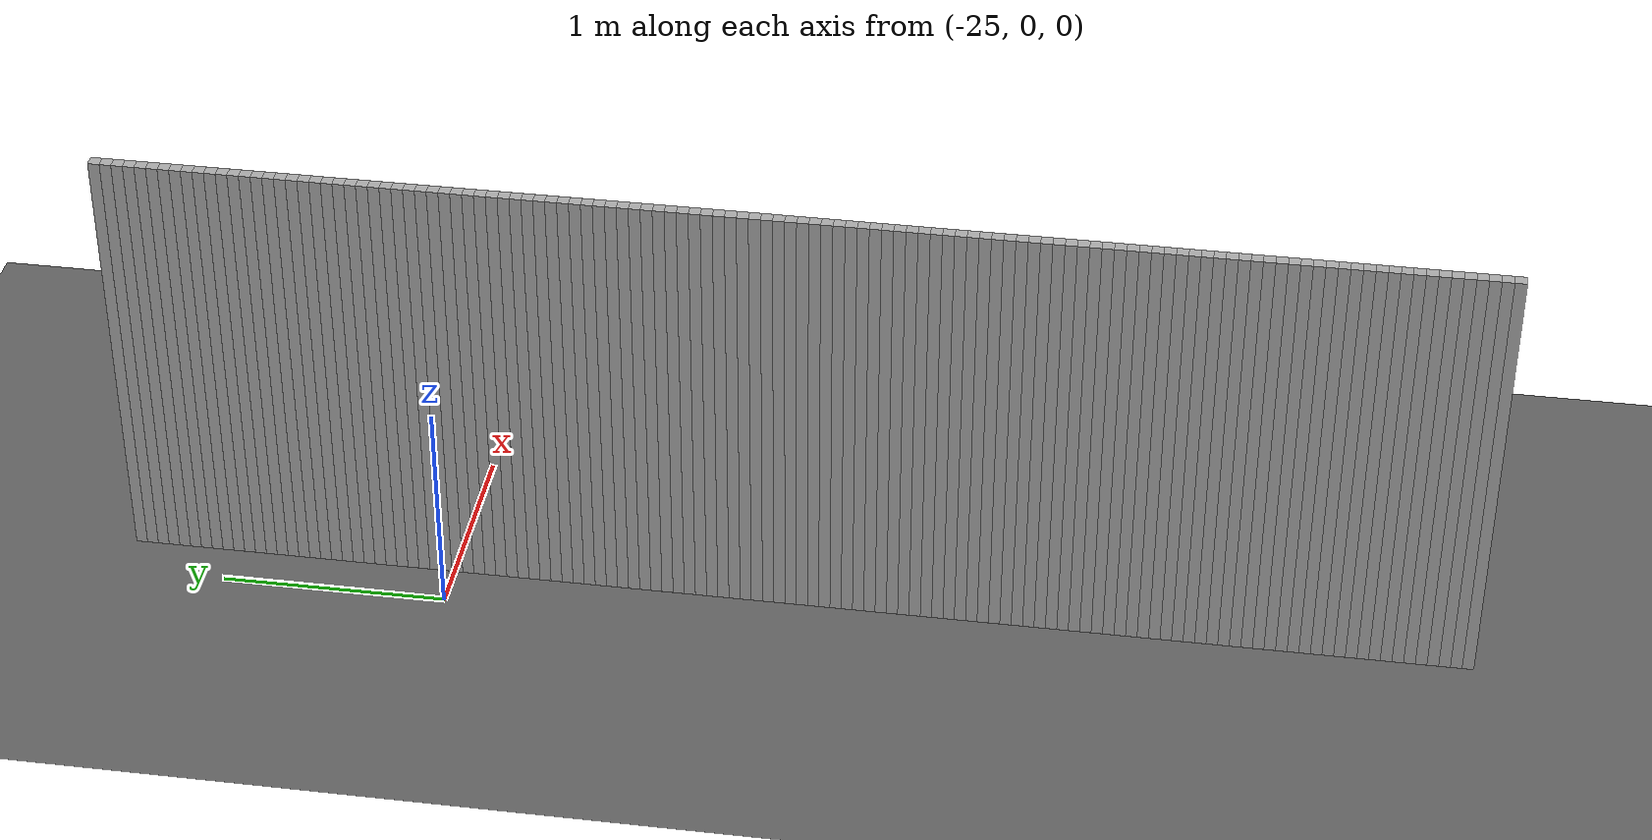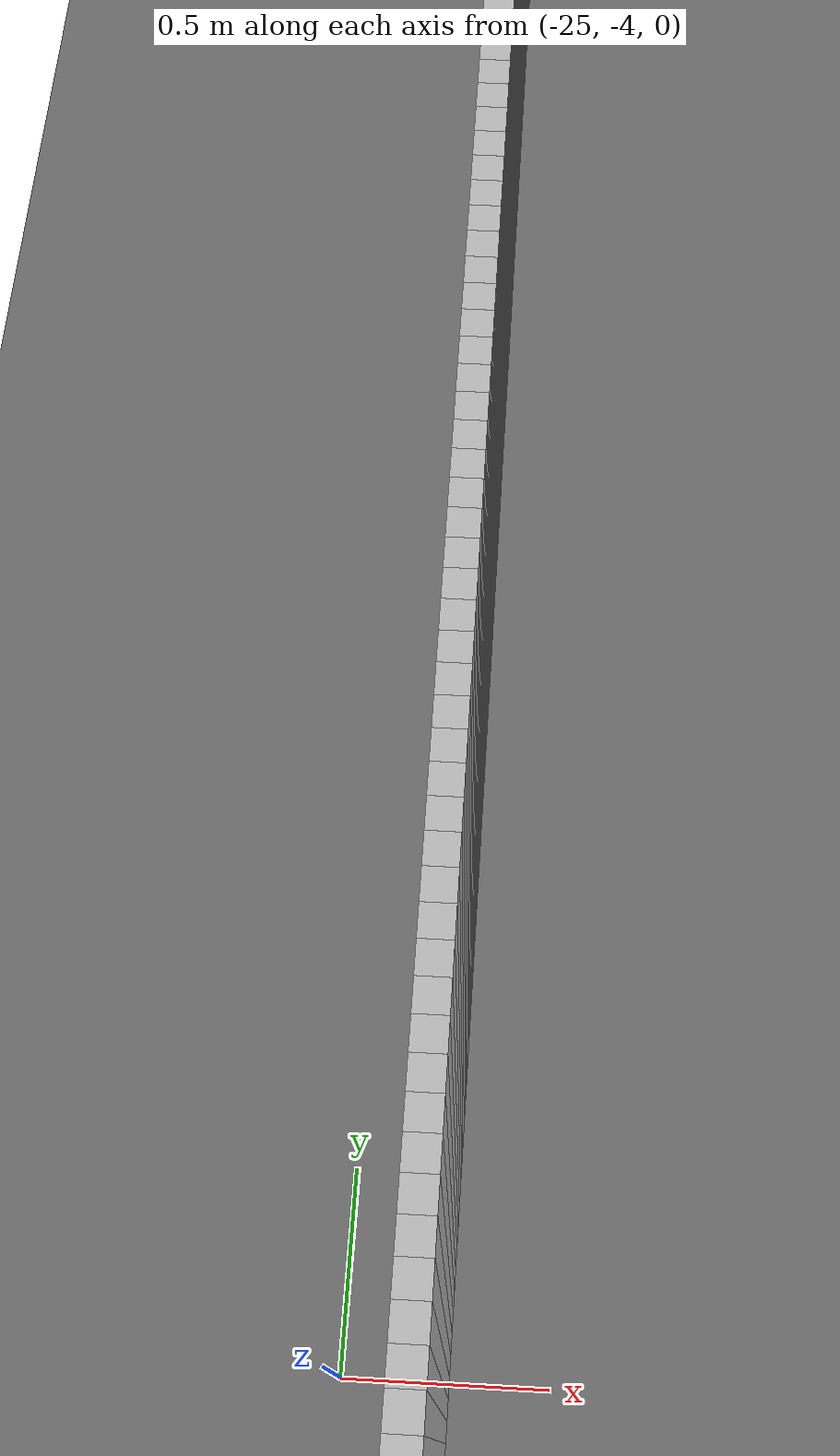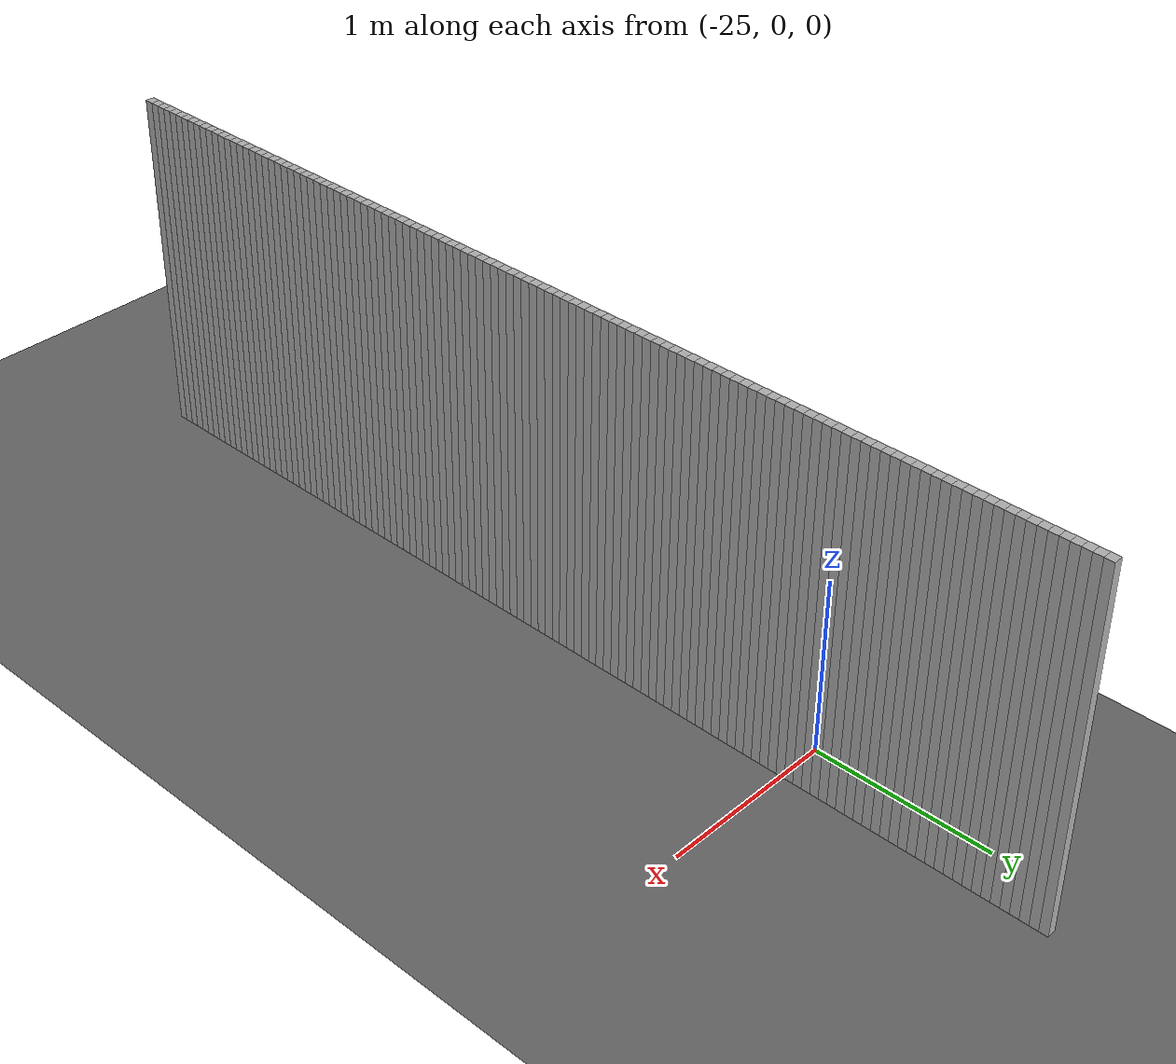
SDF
<sdf version="1.8">
 <world name="real_map">
  <model name="ground">
   <static>true</static>
   <link name="l">
    <collision name="c"><geometry><plane><normal>0 0 1</normal><size>100 100</size></plane></geometry></collision>
    <visual name="v">
     <geometry><plane><normal>0 0 1</normal><size>100 100</size></plane></geometry>
     <material><ambient>0.3 0.3 0.3 1</ambient><diffuse>0.4 0.4 0.4 1</diffuse></material>
    </visual>
   </link>
  </model>
  <model name="walls">
   <static>true</static>
   <link name="w1077">
    <pose>-24.766 1.442 1.000 0 0 0</pose>
    <collision name="c"><geometry><box><size>0.050 0.050 2.000</size></box></geometry></collision>
    <visual name="v">
     <geometry><box><size>0.050 0.050 2.000</size></box></geometry>
     <material><ambient>0.7 0.7 0.7 1</ambient><diffuse>0.7 0.7 0.7 1</diffuse></material>
    </visual>
   </link>
   <link name="w1079">
    <pose>-24.766 1.392 1.000 0 0 0</pose>
    <collision name="c"><geometry><box><size>0.050 0.050 2.000</size></box></geometry></collision>
    <visual name="v">
     <geometry><box><size>0.050 0.050 2.000</size></box></geometry>
     <material><ambient>0.7 0.7 0.7 1</ambient><diffuse>0.7 0.7 0.7 1</diffuse></material>
    </visual>
   </link>
   <link name="w1081">
    <pose>-24.766 1.342 1.000 0 0 0</pose>
    <collision name="c"><geometry><box><size>0.050 0.050 2.000</size></box></geometry></collision>
    <visual name="v">
     <geometry><box><size>0.050 0.050 2.000</size></box></geometry>
     <material><ambient>0.7 0.7 0.7 1</ambient><diffuse>0.7 0.7 0.7 1</diffuse></material>
    </visual>
   </link>
   <link name="w1083">
    <pose>-24.766 1.292 1.000 0 0 0</pose>
    <collision name="c"><geometry><box><size>0.050 0.050 2.000</size></box></geometry></collision>
    <visual name="v">
     <geometry><box><size>0.050 0.050 2.000</size></box></geometry>
     <material><ambient>0.7 0.7 0.7 1</ambient><diffuse>0.7 0.7 0.7 1</diffuse></material>
    </visual>
   </link>
   <link name="w1085">
    <pose>-24.766 1.242 1.000 0 0 0</pose>
    <collision name="c"><geometry><box><size>0.050 0.050 2.000</size></box></geometry></collision>
    <visual name="v">
     <geometry><box><size>0.050 0.050 2.000</size></box></geometry>
     <material><ambient>0.7 0.7 0.7 1</ambient><diffuse>0.7 0.7 0.7 1</diffuse></material>
    </visual>
   </link>
   <link name="w1087">
    <pose>-24.766 1.192 1.000 0 0 0</pose>
    <collision name="c"><geometry><box><size>0.050 0.050 2.000</size></box></geometry></collision>
    <visual name="v">
     <geometry><box><size>0.050 0.050 2.000</size></box></geometry>
     <material><ambient>0.7 0.7 0.7 1</ambient><diffuse>0.7 0.7 0.7 1</diffuse></material>
    </visual>
   </link>
   <link name="w1089">
    <pose>-24.766 1.142 1.000 0 0 0</pose>
    <collision name="c"><geometry><box><size>0.050 0.050 2.000</size></box></geometry></collision>
    <visual name="v">
     <geometry><box><size>0.050 0.050 2.000</size></box></geometry>
     <material><ambient>0.7 0.7 0.7 1</ambient><diffuse>0.7 0.7 0.7 1</diffuse></material>
    </visual>
   </link>
   <link name="w1091">
    <pose>-24.766 1.092 1.000 0 0 0</pose>
    <collision name="c"><geometry><box><size>0.050 0.050 2.000</size></box></geometry></collision>
    <visual name="v">
     <geometry><box><size>0.050 0.050 2.000</size></box></geometry>
     <material><ambient>0.7 0.7 0.7 1</ambient><diffuse>0.7 0.7 0.7 1</diffuse></material>
    </visual>
   </link>
   <link name="w1093">
    <pose>-24.766 1.042 1.000 0 0 0</pose>
    <collision name="c"><geometry><box><size>0.050 0.050 2.000</size></box></geometry></collision>
    <visual name="v">
     <geometry><box><size>0.050 0.050 2.000</size></box></geometry>
     <material><ambient>0.7 0.7 0.7 1</ambient><diffuse>0.7 0.7 0.7 1</diffuse></material>
    </visual>
   </link>
   <link name="w1095">
    <pose>-24.766 0.992 1.000 0 0 0</pose>
    <collision name="c"><geometry><box><size>0.050 0.050 2.000</size></box></geometry></collision>
    <visual name="v">
     <geometry><box><size>0.050 0.050 2.000</size></box></geometry>
     <material><ambient>0.7 0.7 0.7 1</ambient><diffuse>0.7 0.7 0.7 1</diffuse></material>
    </visual>
   </link>
   <link name="w1097">
    <pose>-24.766 0.942 1.000 0 0 0</pose>
    <collision name="c"><geometry><box><size>0.050 0.050 2.000</size></box></geometry></collision>
    <visual name="v">
     <geometry><box><size>0.050 0.050 2.000</size></box></geometry>
     <material><ambient>0.7 0.7 0.7 1</ambient><diffuse>0.7 0.7 0.7 1</diffuse></material>
    </visual>
   </link>
   <link name="w1099">
    <pose>-24.766 0.892 1.000 0 0 0</pose>
    <collision name="c"><geometry><box><size>0.050 0.050 2.000</size></box></geometry></collision>
    <visual name="v">
     <geometry><box><size>0.050 0.050 2.000</size></box></geometry>
     <material><ambient>0.7 0.7 0.7 1</ambient><diffuse>0.7 0.7 0.7 1</diffuse></material>
    </visual>
   </link>
   <link name="w1101">
    <pose>-24.766 0.842 1.000 0 0 0</pose>
    <collision name="c"><geometry><box><size>0.050 0.050 2.000</size></box></geometry></collision>
    <visual name="v">
     <geometry><box><size>0.050 0.050 2.000</size></box></geometry>
     <material><ambient>0.7 0.7 0.7 1</ambient><diffuse>0.7 0.7 0.7 1</diffuse></material>
    </visual>
   </link>
   <link name="w1103">
    <pose>-24.766 0.792 1.000 0 0 0</pose>
    <collision name="c"><geometry><box><size>0.050 0.050 2.000</size></box></geometry></collision>
    <visual name="v">
     <geometry><box><size>0.050 0.050 2.000</size></box></geometry>
     <material><ambient>0.7 0.7 0.7 1</ambient><diffuse>0.7 0.7 0.7 1</diffuse></material>
    </visual>
   </link>
   <link name="w1105">
    <pose>-24.766 0.742 1.000 0 0 0</pose>
    <collision name="c"><geometry><box><size>0.050 0.050 2.000</size></box></geometry></collision>
    <visual name="v">
     <geometry><box><size>0.050 0.050 2.000</size></box></geometry>
     <material><ambient>0.7 0.7 0.7 1</ambient><diffuse>0.7 0.7 0.7 1</diffuse></material>
    </visual>
   </link>
   <link name="w1107">
    <pose>-24.766 0.692 1.000 0 0 0</pose>
    <collision name="c"><geometry><box><size>0.050 0.050 2.000</size></box></geometry></collision>
    <visual name="v">
     <geometry><box><size>0.050 0.050 2.000</size></box></geometry>
     <material><ambient>0.7 0.7 0.7 1</ambient><diffuse>0.7 0.7 0.7 1</diffuse></material>
    </visual>
   </link>
   <link name="w1109">
    <pose>-24.766 0.642 1.000 0 0 0</pose>
    <collision name="c"><geometry><box><size>0.050 0.050 2.000</size></box></geometry></collision>
    <visual name="v">
     <geometry><box><size>0.050 0.050 2.000</size></box></geometry>
     <material><ambient>0.7 0.7 0.7 1</ambient><diffuse>0.7 0.7 0.7 1</diffuse></material>
    </visual>
   </link>
   <link name="w1111">
    <pose>-24.766 0.592 1.000 0 0 0</pose>
    <collision name="c"><geometry><box><size>0.050 0.050 2.000</size></box></geometry></collision>
    <visual name="v">
     <geometry><box><size>0.050 0.050 2.000</size></box></geometry>
     <material><ambient>0.7 0.7 0.7 1</ambient><diffuse>0.7 0.7 0.7 1</diffuse></material>
    </visual>
   </link>
   <link name="w1113">
    <pose>-24.766 0.542 1.000 0 0 0</pose>
    <collision name="c"><geometry><box><size>0.050 0.050 2.000</size></box></geometry></collision>
    <visual name="v">
     <geometry><box><size>0.050 0.050 2.000</size></box></geometry>
     <material><ambient>0.7 0.7 0.7 1</ambient><diffuse>0.7 0.7 0.7 1</diffuse></material>
    </visual>
   </link>
   <link name="w1115">
    <pose>-24.766 0.492 1.000 0 0 0</pose>
    <collision name="c"><geometry><box><size>0.050 0.050 2.000</size></box></geometry></collision>
    <visual name="v">
     <geometry><box><size>0.050 0.050 2.000</size></box></geometry>
     <material><ambient>0.7 0.7 0.7 1</ambient><diffuse>0.7 0.7 0.7 1</diffuse></material>
    </visual>
   </link>
   <link name="w1117">
    <pose>-24.766 0.442 1.000 0 0 0</pose>
    <collision name="c"><geometry><box><size>0.050 0.050 2.000</size></box></geometry></collision>
    <visual name="v">
     <geometry><box><size>0.050 0.050 2.000</size></box></geometry>
     <material><ambient>0.7 0.7 0.7 1</ambient><diffuse>0.7 0.7 0.7 1</diffuse></material>
    </visual>
   </link>
   <link name="w1119">
    <pose>-24.766 0.392 1.000 0 0 0</pose>
    <collision name="c"><geometry><box><size>0.050 0.050 2.000</size></box></geometry></collision>
    <visual name="v">
     <geometry><box><size>0.050 0.050 2.000</size></box></geometry>
     <material><ambient>0.7 0.7 0.7 1</ambient><diffuse>0.7 0.7 0.7 1</diffuse></material>
    </visual>
   </link>
   <link name="w1121">
    <pose>-24.766 0.342 1.000 0 0 0</pose>
    <collision name="c"><geometry><box><size>0.050 0.050 2.000</size></box></geometry></collision>
    <visual name="v">
     <geometry><box><size>0.050 0.050 2.000</size></box></geometry>
     <material><ambient>0.7 0.7 0.7 1</ambient><diffuse>0.7 0.7 0.7 1</diffuse></material>
    </visual>
   </link>
   <link name="w1123">
    <pose>-24.766 0.292 1.000 0 0 0</pose>
    <collision name="c"><geometry><box><size>0.050 0.050 2.000</size></box></geometry></collision>
    <visual name="v">
     <geometry><box><size>0.050 0.050 2.000</size></box></geometry>
     <material><ambient>0.7 0.7 0.7 1</ambient><diffuse>0.7 0.7 0.7 1</diffuse></material>
    </visual>
   </link>
   <link name="w1125">
    <pose>-24.766 0.242 1.000 0 0 0</pose>
    <collision name="c"><geometry><box><size>0.050 0.050 2.000</size></box></geometry></collision>
    <visual name="v">
     <geometry><box><size>0.050 0.050 2.000</size></box></geometry>
     <material><ambient>0.7 0.7 0.7 1</ambient><diffuse>0.7 0.7 0.7 1</diffuse></material>
    </visual>
   </link>
   <link name="w1127">
    <pose>-24.766 0.192 1.000 0 0 0</pose>
    <collision name="c"><geometry><box><size>0.050 0.050 2.000</size></box></geometry></collision>
    <visual name="v">
     <geometry><box><size>0.050 0.050 2.000</size></box></geometry>
     <material><ambient>0.7 0.7 0.7 1</ambient><diffuse>0.7 0.7 0.7 1</diffuse></material>
    </visual>
   </link>
   <link name="w1129">
    <pose>-24.766 0.142 1.000 0 0 0</pose>
    <collision name="c"><geometry><box><size>0.050 0.050 2.000</size></box></geometry></collision>
    <visual name="v">
     <geometry><box><size>0.050 0.050 2.000</size></box></geometry>
     <material><ambient>0.7 0.7 0.7 1</ambient><diffuse>0.7 0.7 0.7 1</diffuse></material>
    </visual>
   </link>
   <link name="w1131">
    <pose>-24.766 0.092 1.000 0 0 0</pose>
    <collision name="c"><geometry><box><size>0.050 0.050 2.000</size></box></geometry></collision>
    <visual name="v">
     <geometry><box><size>0.050 0.050 2.000</size></box></geometry>
     <material><ambient>0.7 0.7 0.7 1</ambient><diffuse>0.7 0.7 0.7 1</diffuse></material>
    </visual>
   </link>
   <link name="w1133">
    <pose>-24.766 0.042 1.000 0 0 0</pose>
    <collision name="c"><geometry><box><size>0.050 0.050 2.000</size></box></geometry></collision>
    <visual name="v">
     <geometry><box><size>0.050 0.050 2.000</size></box></geometry>
     <material><ambient>0.7 0.7 0.7 1</ambient><diffuse>0.7 0.7 0.7 1</diffuse></material>
    </visual>
   </link>
   <link name="w1135">
    <pose>-24.766 -0.008 1.000 0 0 0</pose>
    <collision name="c"><geometry><box><size>0.050 0.050 2.000</size></box></geometry></collision>
    <visual name="v">
     <geometry><box><size>0.050 0.050 2.000</size></box></geometry>
     <material><ambient>0.7 0.7 0.7 1</ambient><diffuse>0.7 0.7 0.7 1</diffuse></material>
    </visual>
   </link>
   <link name="w1137">
    <pose>-24.766 -0.058 1.000 0 0 0</pose>
    <collision name="c"><geometry><box><size>0.050 0.050 2.000</size></box></geometry></collision>
    <visual name="v">
     <geometry><box><size>0.050 0.050 2.000</size></box></geometry>
     <material><ambient>0.7 0.7 0.7 1</ambient><diffuse>0.7 0.7 0.7 1</diffuse></material>
    </visual>
   </link>
   <link name="w1139">
    <pose>-24.766 -0.108 1.000 0 0 0</pose>
    <collision name="c"><geometry><box><size>0.050 0.050 2.000</size></box></geometry></collision>
    <visual name="v">
     <geometry><box><size>0.050 0.050 2.000</size></box></geometry>
     <material><ambient>0.7 0.7 0.7 1</ambient><diffuse>0.7 0.7 0.7 1</diffuse></material>
    </visual>
   </link>
   <link name="w1141">
    <pose>-24.766 -0.158 1.000 0 0 0</pose>
    <collision name="c"><geometry><box><size>0.050 0.050 2.000</size></box></geometry></collision>
    <visual name="v">
     <geometry><box><size>0.050 0.050 2.000</size></box></geometry>
     <material><ambient>0.7 0.7 0.7 1</ambient><diffuse>0.7 0.7 0.7 1</diffuse></material>
    </visual>
   </link>
   <link name="w1143">
    <pose>-24.766 -0.208 1.000 0 0 0</pose>
    <collision name="c"><geometry><box><size>0.050 0.050 2.000</size></box></geometry></collision>
    <visual name="v">
     <geometry><box><size>0.050 0.050 2.000</size></box></geometry>
     <material><ambient>0.7 0.7 0.7 1</ambient><diffuse>0.7 0.7 0.7 1</diffuse></material>
    </visual>
   </link>
   <link name="w1145">
    <pose>-24.766 -0.258 1.000 0 0 0</pose>
    <collision name="c"><geometry><box><size>0.050 0.050 2.000</size></box></geometry></collision>
    <visual name="v">
     <geometry><box><size>0.050 0.050 2.000</size></box></geometry>
     <material><ambient>0.7 0.7 0.7 1</ambient><diffuse>0.7 0.7 0.7 1</diffuse></material>
    </visual>
   </link>
   <link name="w1147">
    <pose>-24.766 -0.308 1.000 0 0 0</pose>
    <collision name="c"><geometry><box><size>0.050 0.050 2.000</size></box></geometry></collision>
    <visual name="v">
     <geometry><box><size>0.050 0.050 2.000</size></box></geometry>
     <material><ambient>0.7 0.7 0.7 1</ambient><diffuse>0.7 0.7 0.7 1</diffuse></material>
    </visual>
   </link>
   <link name="w1149">
    <pose>-24.766 -0.358 1.000 0 0 0</pose>
    <collision name="c"><geometry><box><size>0.050 0.050 2.000</size></box></geometry></collision>
    <visual name="v">
     <geometry><box><size>0.050 0.050 2.000</size></box></geometry>
     <material><ambient>0.7 0.7 0.7 1</ambient><diffuse>0.7 0.7 0.7 1</diffuse></material>
    </visual>
   </link>
   <link name="w1151">
    <pose>-24.766 -0.408 1.000 0 0 0</pose>
    <collision name="c"><geometry><box><size>0.050 0.050 2.000</size></box></geometry></collision>
    <visual name="v">
     <geometry><box><size>0.050 0.050 2.000</size></box></geometry>
     <material><ambient>0.7 0.7 0.7 1</ambient><diffuse>0.7 0.7 0.7 1</diffuse></material>
    </visual>
   </link>
   <link name="w1153">
    <pose>-24.766 -0.458 1.000 0 0 0</pose>
    <collision name="c"><geometry><box><size>0.050 0.050 2.000</size></box></geometry></collision>
    <visual name="v">
     <geometry><box><size>0.050 0.050 2.000</size></box></geometry>
     <material><ambient>0.7 0.7 0.7 1</ambient><diffuse>0.7 0.7 0.7 1</diffuse></material>
    </visual>
   </link>
   <link name="w1155">
    <pose>-24.766 -0.508 1.000 0 0 0</pose>
    <collision name="c"><geometry><box><size>0.050 0.050 2.000</size></box></geometry></collision>
    <visual name="v">
     <geometry><box><size>0.050 0.050 2.000</size></box></geometry>
     <material><ambient>0.7 0.7 0.7 1</ambient><diffuse>0.7 0.7 0.7 1</diffuse></material>
    </visual>
   </link>
   <link name="w1157">
    <pose>-24.766 -0.558 1.000 0 0 0</pose>
    <collision name="c"><geometry><box><size>0.050 0.050 2.000</size></box></geometry></collision>
    <visual name="v">
     <geometry><box><size>0.050 0.050 2.000</size></box></geometry>
     <material><ambient>0.7 0.7 0.7 1</ambient><diffuse>0.7 0.7 0.7 1</diffuse></material>
    </visual>
   </link>
   <link name="w1159">
    <pose>-24.766 -0.608 1.000 0 0 0</pose>
    <collision name="c"><geometry><box><size>0.050 0.050 2.000</size></box></geometry></collision>
    <visual name="v">
     <geometry><box><size>0.050 0.050 2.000</size></box></geometry>
     <material><ambient>0.7 0.7 0.7 1</ambient><diffuse>0.7 0.7 0.7 1</diffuse></material>
    </visual>
   </link>
   <link name="w1161">
    <pose>-24.766 -0.658 1.000 0 0 0</pose>
    <collision name="c"><geometry><box><size>0.050 0.050 2.000</size></box></geometry></collision>
    <visual name="v">
     <geometry><box><size>0.050 0.050 2.000</size></box></geometry>
     <material><ambient>0.7 0.7 0.7 1</ambient><diffuse>0.7 0.7 0.7 1</diffuse></material>
    </visual>
   </link>
   <link name="w1163">
    <pose>-24.766 -0.708 1.000 0 0 0</pose>
    <collision name="c"><geometry><box><size>0.050 0.050 2.000</size></box></geometry></collision>
    <visual name="v">
     <geometry><box><size>0.050 0.050 2.000</size></box></geometry>
     <material><ambient>0.7 0.7 0.7 1</ambient><diffuse>0.7 0.7 0.7 1</diffuse></material>
    </visual>
   </link>
   <link name="w1165">
    <pose>-24.766 -0.758 1.000 0 0 0</pose>
    <collision name="c"><geometry><box><size>0.050 0.050 2.000</size></box></geometry></collision>
    <visual name="v">
     <geometry><box><size>0.050 0.050 2.000</size></box></geometry>
     <material><ambient>0.7 0.7 0.7 1</ambient><diffuse>0.7 0.7 0.7 1</diffuse></material>
    </visual>
   </link>
   <link name="w1167">
    <pose>-24.766 -0.808 1.000 0 0 0</pose>
    <collision name="c"><geometry><box><size>0.050 0.050 2.000</size></box></geometry></collision>
    <visual name="v">
     <geometry><box><size>0.050 0.050 2.000</size></box></geometry>
     <material><ambient>0.7 0.7 0.7 1</ambient><diffuse>0.7 0.7 0.7 1</diffuse></material>
    </visual>
   </link>
   <link name="w1169">
    <pose>-24.766 -0.858 1.000 0 0 0</pose>
    <collision name="c"><geometry><box><size>0.050 0.050 2.000</size></box></geometry></collision>
    <visual name="v">
     <geometry><box><size>0.050 0.050 2.000</size></box></geometry>
     <material><ambient>0.7 0.7 0.7 1</ambient><diffuse>0.7 0.7 0.7 1</diffuse></material>
    </visual>
   </link>
   <link name="w1171">
    <pose>-24.766 -0.908 1.000 0 0 0</pose>
    <collision name="c"><geometry><box><size>0.050 0.050 2.000</size></box></geometry></collision>
    <visual name="v">
     <geometry><box><size>0.050 0.050 2.000</size></box></geometry>
     <material><ambient>0.7 0.7 0.7 1</ambient><diffuse>0.7 0.7 0.7 1</diffuse></material>
    </visual>
   </link>
   <link name="w1173">
    <pose>-24.766 -0.958 1.000 0 0 0</pose>
    <collision name="c"><geometry><box><size>0.050 0.050 2.000</size></box></geometry></collision>
    <visual name="v">
     <geometry><box><size>0.050 0.050 2.000</size></box></geometry>
     <material><ambient>0.7 0.7 0.7 1</ambient><diffuse>0.7 0.7 0.7 1</diffuse></material>
    </visual>
   </link>
   <link name="w1175">
    <pose>-24.766 -1.008 1.000 0 0 0</pose>
    <collision name="c"><geometry><box><size>0.050 0.050 2.000</size></box></geometry></collision>
    <visual name="v">
     <geometry><box><size>0.050 0.050 2.000</size></box></geometry>
     <material><ambient>0.7 0.7 0.7 1</ambient><diffuse>0.7 0.7 0.7 1</diffuse></material>
    </visual>
   </link>
   <link name="w1177">
    <pose>-24.766 -1.058 1.000 0 0 0</pose>
    <collision name="c"><geometry><box><size>0.050 0.050 2.000</size></box></geometry></collision>
    <visual name="v">
     <geometry><box><size>0.050 0.050 2.000</size></box></geometry>
     <material><ambient>0.7 0.7 0.7 1</ambient><diffuse>0.7 0.7 0.7 1</diffuse></material>
    </visual>
   </link>
   <link name="w1179">
    <pose>-24.766 -1.108 1.000 0 0 0</pose>
    <collision name="c"><geometry><box><size>0.050 0.050 2.000</size></box></geometry></collision>
    <visual name="v">
     <geometry><box><size>0.050 0.050 2.000</size></box></geometry>
     <material><ambient>0.7 0.7 0.7 1</ambient><diffuse>0.7 0.7 0.7 1</diffuse></material>
    </visual>
   </link>
   <link name="w1181">
    <pose>-24.766 -1.158 1.000 0 0 0</pose>
    <collision name="c"><geometry><box><size>0.050 0.050 2.000</size></box></geometry></collision>
    <visual name="v">
     <geometry><box><size>0.050 0.050 2.000</size></box></geometry>
     <material><ambient>0.7 0.7 0.7 1</ambient><diffuse>0.7 0.7 0.7 1</diffuse></material>
    </visual>
   </link>
   <link name="w1183">
    <pose>-24.766 -1.208 1.000 0 0 0</pose>
    <collision name="c"><geometry><box><size>0.050 0.050 2.000</size></box></geometry></collision>
    <visual name="v">
     <geometry><box><size>0.050 0.050 2.000</size></box></geometry>
     <material><ambient>0.7 0.7 0.7 1</ambient><diffuse>0.7 0.7 0.7 1</diffuse></material>
    </visual>
   </link>
   <link name="w1185">
    <pose>-24.766 -1.258 1.000 0 0 0</pose>
    <collision name="c"><geometry><box><size>0.050 0.050 2.000</size></box></geometry></collision>
    <visual name="v">
     <geometry><box><size>0.050 0.050 2.000</size></box></geometry>
     <material><ambient>0.7 0.7 0.7 1</ambient><diffuse>0.7 0.7 0.7 1</diffuse></material>
    </visual>
   </link>
   <link name="w1187">
    <pose>-24.766 -1.308 1.000 0 0 0</pose>
    <collision name="c"><geometry><box><size>0.050 0.050 2.000</size></box></geometry></collision>
    <visual name="v">
     <geometry><box><size>0.050 0.050 2.000</size></box></geometry>
     <material><ambient>0.7 0.7 0.7 1</ambient><diffuse>0.7 0.7 0.7 1</diffuse></material>
    </visual>
   </link>
   <link name="w1189">
    <pose>-24.766 -1.358 1.000 0 0 0</pose>
    <collision name="c"><geometry><box><size>0.050 0.050 2.000</size></box></geometry></collision>
    <visual name="v">
     <geometry><box><size>0.050 0.050 2.000</size></box></geometry>
     <material><ambient>0.7 0.7 0.7 1</ambient><diffuse>0.7 0.7 0.7 1</diffuse></material>
    </visual>
   </link>
   <link name="w1191">
    <pose>-24.766 -1.408 1.000 0 0 0</pose>
    <collision name="c"><geometry><box><size>0.050 0.050 2.000</size></box></geometry></collision>
    <visual name="v">
     <geometry><box><size>0.050 0.050 2.000</size></box></geometry>
     <material><ambient>0.7 0.7 0.7 1</ambient><diffuse>0.7 0.7 0.7 1</diffuse></material>
    </visual>
   </link>
   <link name="w1193">
    <pose>-24.766 -1.458 1.000 0 0 0</pose>
    <collision name="c"><geometry><box><size>0.050 0.050 2.000</size></box></geometry></collision>
    <visual name="v">
     <geometry><box><size>0.050 0.050 2.000</size></box></geometry>
     <material><ambient>0.7 0.7 0.7 1</ambient><diffuse>0.7 0.7 0.7 1</diffuse></material>
    </visual>
   </link>
   <link name="w1195">
    <pose>-24.766 -1.508 1.000 0 0 0</pose>
    <collision name="c"><geometry><box><size>0.050 0.050 2.000</size></box></geometry></collision>
    <visual name="v">
     <geometry><box><size>0.050 0.050 2.000</size></box></geometry>
     <material><ambient>0.7 0.7 0.7 1</ambient><diffuse>0.7 0.7 0.7 1</diffuse></material>
    </visual>
   </link>
   <link name="w1197">
    <pose>-24.766 -1.558 1.000 0 0 0</pose>
    <collision name="c"><geometry><box><size>0.050 0.050 2.000</size></box></geometry></collision>
    <visual name="v">
     <geometry><box><size>0.050 0.050 2.000</size></box></geometry>
     <material><ambient>0.7 0.7 0.7 1</ambient><diffuse>0.7 0.7 0.7 1</diffuse></material>
    </visual>
   </link>
   <link name="w1199">
    <pose>-24.766 -1.608 1.000 0 0 0</pose>
    <collision name="c"><geometry><box><size>0.050 0.050 2.000</size></box></geometry></collision>
    <visual name="v">
     <geometry><box><size>0.050 0.050 2.000</size></box></geometry>
     <material><ambient>0.7 0.7 0.7 1</ambient><diffuse>0.7 0.7 0.7 1</diffuse></material>
    </visual>
   </link>
   <link name="w1201">
    <pose>-24.766 -1.658 1.000 0 0 0</pose>
    <collision name="c"><geometry><box><size>0.050 0.050 2.000</size></box></geometry></collision>
    <visual name="v">
     <geometry><box><size>0.050 0.050 2.000</size></box></geometry>
     <material><ambient>0.7 0.7 0.7 1</ambient><diffuse>0.7 0.7 0.7 1</diffuse></material>
    </visual>
   </link>
   <link name="w1203">
    <pose>-24.766 -1.708 1.000 0 0 0</pose>
    <collision name="c"><geometry><box><size>0.050 0.050 2.000</size></box></geometry></collision>
    <visual name="v">
     <geometry><box><size>0.050 0.050 2.000</size></box></geometry>
     <material><ambient>0.7 0.7 0.7 1</ambient><diffuse>0.7 0.7 0.7 1</diffuse></material>
    </visual>
   </link>
   <link name="w1205">
    <pose>-24.766 -1.758 1.000 0 0 0</pose>
    <collision name="c"><geometry><box><size>0.050 0.050 2.000</size></box></geometry></collision>
    <visual name="v">
     <geometry><box><size>0.050 0.050 2.000</size></box></geometry>
     <material><ambient>0.7 0.7 0.7 1</ambient><diffuse>0.7 0.7 0.7 1</diffuse></material>
    </visual>
   </link>
   <link name="w1207">
    <pose>-24.766 -1.808 1.000 0 0 0</pose>
    <collision name="c"><geometry><box><size>0.050 0.050 2.000</size></box></geometry></collision>
    <visual name="v">
     <geometry><box><size>0.050 0.050 2.000</size></box></geometry>
     <material><ambient>0.7 0.7 0.7 1</ambient><diffuse>0.7 0.7 0.7 1</diffuse></material>
    </visual>
   </link>
   <link name="w1209">
    <pose>-24.766 -1.858 1.000 0 0 0</pose>
    <collision name="c"><geometry><box><size>0.050 0.050 2.000</size></box></geometry></collision>
    <visual name="v">
     <geometry><box><size>0.050 0.050 2.000</size></box></geometry>
     <material><ambient>0.7 0.7 0.7 1</ambient><diffuse>0.7 0.7 0.7 1</diffuse></material>
    </visual>
   </link>
   <link name="w1211">
    <pose>-24.766 -1.908 1.000 0 0 0</pose>
    <collision name="c"><geometry><box><size>0.050 0.050 2.000</size></box></geometry></collision>
    <visual name="v">
     <geometry><box><size>0.050 0.050 2.000</size></box></geometry>
     <material><ambient>0.7 0.7 0.7 1</ambient><diffuse>0.7 0.7 0.7 1</diffuse></material>
    </visual>
   </link>
   <link name="w1213">
    <pose>-24.766 -1.958 1.000 0 0 0</pose>
    <collision name="c"><geometry><box><size>0.050 0.050 2.000</size></box></geometry></collision>
    <visual name="v">
     <geometry><box><size>0.050 0.050 2.000</size></box></geometry>
     <material><ambient>0.7 0.7 0.7 1</ambient><diffuse>0.7 0.7 0.7 1</diffuse></material>
    </visual>
   </link>
   <link name="w1215">
    <pose>-24.766 -2.008 1.000 0 0 0</pose>
    <collision name="c"><geometry><box><size>0.050 0.050 2.000</size></box></geometry></collision>
    <visual name="v">
     <geometry><box><size>0.050 0.050 2.000</size></box></geometry>
     <material><ambient>0.7 0.7 0.7 1</ambient><diffuse>0.7 0.7 0.7 1</diffuse></material>
    </visual>
   </link>
   <link name="w1217">
    <pose>-24.766 -2.058 1.000 0 0 0</pose>
    <collision name="c"><geometry><box><size>0.050 0.050 2.000</size></box></geometry></collision>
    <visual name="v">
     <geometry><box><size>0.050 0.050 2.000</size></box></geometry>
     <material><ambient>0.7 0.7 0.7 1</ambient><diffuse>0.7 0.7 0.7 1</diffuse></material>
    </visual>
   </link>
   <link name="w1219">
    <pose>-24.766 -2.108 1.000 0 0 0</pose>
    <collision name="c"><geometry><box><size>0.050 0.050 2.000</size></box></geometry></collision>
    <visual name="v">
     <geometry><box><size>0.050 0.050 2.000</size></box></geometry>
     <material><ambient>0.7 0.7 0.7 1</ambient><diffuse>0.7 0.7 0.7 1</diffuse></material>
    </visual>
   </link>
   <link name="w1221">
    <pose>-24.766 -2.158 1.000 0 0 0</pose>
    <collision name="c"><geometry><box><size>0.050 0.050 2.000</size></box></geometry></collision>
    <visual name="v">
     <geometry><box><size>0.050 0.050 2.000</size></box></geometry>
     <material><ambient>0.7 0.7 0.7 1</ambient><diffuse>0.7 0.7 0.7 1</diffuse></material>
    </visual>
   </link>
   <link name="w1223">
    <pose>-24.766 -2.208 1.000 0 0 0</pose>
    <collision name="c"><geometry><box><size>0.050 0.050 2.000</size></box></geometry></collision>
    <visual name="v">
     <geometry><box><size>0.050 0.050 2.000</size></box></geometry>
     <material><ambient>0.7 0.7 0.7 1</ambient><diffuse>0.7 0.7 0.7 1</diffuse></material>
    </visual>
   </link>
   <link name="w1225">
    <pose>-24.766 -2.258 1.000 0 0 0</pose>
    <collision name="c"><geometry><box><size>0.050 0.050 2.000</size></box></geometry></collision>
    <visual name="v">
     <geometry><box><size>0.050 0.050 2.000</size></box></geometry>
     <material><ambient>0.7 0.7 0.7 1</ambient><diffuse>0.7 0.7 0.7 1</diffuse></material>
    </visual>
   </link>
   <link name="w1227">
    <pose>-24.766 -2.308 1.000 0 0 0</pose>
    <collision name="c"><geometry><box><size>0.050 0.050 2.000</size></box></geometry></collision>
    <visual name="v">
     <geometry><box><size>0.050 0.050 2.000</size></box></geometry>
     <material><ambient>0.7 0.7 0.7 1</ambient><diffuse>0.7 0.7 0.7 1</diffuse></material>
    </visual>
   </link>
   <link name="w1229">
    <pose>-24.766 -2.358 1.000 0 0 0</pose>
    <collision name="c"><geometry><box><size>0.050 0.050 2.000</size></box></geometry></collision>
    <visual name="v">
     <geometry><box><size>0.050 0.050 2.000</size></box></geometry>
     <material><ambient>0.7 0.7 0.7 1</ambient><diffuse>0.7 0.7 0.7 1</diffuse></material>
    </visual>
   </link>
   <link name="w1231">
    <pose>-24.766 -2.408 1.000 0 0 0</pose>
    <collision name="c"><geometry><box><size>0.050 0.050 2.000</size></box></geometry></collision>
    <visual name="v">
     <geometry><box><size>0.050 0.050 2.000</size></box></geometry>
     <material><ambient>0.7 0.7 0.7 1</ambient><diffuse>0.7 0.7 0.7 1</diffuse></material>
    </visual>
   </link>
   <link name="w1233">
    <pose>-24.766 -2.458 1.000 0 0 0</pose>
    <collision name="c"><geometry><box><size>0.050 0.050 2.000</size></box></geometry></collision>
    <visual name="v">
     <geometry><box><size>0.050 0.050 2.000</size></box></geometry>
     <material><ambient>0.7 0.7 0.7 1</ambient><diffuse>0.7 0.7 0.7 1</diffuse></material>
    </visual>
   </link>
   <link name="w1235">
    <pose>-24.766 -2.508 1.000 0 0 0</pose>
    <collision name="c"><geometry><box><size>0.050 0.050 2.000</size></box></geometry></collision>
    <visual name="v">
     <geometry><box><size>0.050 0.050 2.000</size></box></geometry>
     <material><ambient>0.7 0.7 0.7 1</ambient><diffuse>0.7 0.7 0.7 1</diffuse></material>
    </visual>
   </link>
   <link name="w1237">
    <pose>-24.766 -2.558 1.000 0 0 0</pose>
    <collision name="c"><geometry><box><size>0.050 0.050 2.000</size></box></geometry></collision>
    <visual name="v">
     <geometry><box><size>0.050 0.050 2.000</size></box></geometry>
     <material><ambient>0.7 0.7 0.7 1</ambient><diffuse>0.7 0.7 0.7 1</diffuse></material>
    </visual>
   </link>
   <link name="w1239">
    <pose>-24.766 -2.608 1.000 0 0 0</pose>
    <collision name="c"><geometry><box><size>0.050 0.050 2.000</size></box></geometry></collision>
    <visual name="v">
     <geometry><box><size>0.050 0.050 2.000</size></box></geometry>
     <material><ambient>0.7 0.7 0.7 1</ambient><diffuse>0.7 0.7 0.7 1</diffuse></material>
    </visual>
   </link>
   <link name="w1241">
    <pose>-24.766 -2.658 1.000 0 0 0</pose>
    <collision name="c"><geometry><box><size>0.050 0.050 2.000</size></box></geometry></collision>
    <visual name="v">
     <geometry><box><size>0.050 0.050 2.000</size></box></geometry>
     <material><ambient>0.7 0.7 0.7 1</ambient><diffuse>0.7 0.7 0.7 1</diffuse></material>
    </visual>
   </link>
   <link name="w1243">
    <pose>-24.766 -2.708 1.000 0 0 0</pose>
    <collision name="c"><geometry><box><size>0.050 0.050 2.000</size></box></geometry></collision>
    <visual name="v">
     <geometry><box><size>0.050 0.050 2.000</size></box></geometry>
     <material><ambient>0.7 0.7 0.7 1</ambient><diffuse>0.7 0.7 0.7 1</diffuse></material>
    </visual>
   </link>
   <link name="w1245">
    <pose>-24.766 -2.758 1.000 0 0 0</pose>
    <collision name="c"><geometry><box><size>0.050 0.050 2.000</size></box></geometry></collision>
    <visual name="v">
     <geometry><box><size>0.050 0.050 2.000</size></box></geometry>
     <material><ambient>0.7 0.7 0.7 1</ambient><diffuse>0.7 0.7 0.7 1</diffuse></material>
    </visual>
   </link>
   <link name="w1247">
    <pose>-24.766 -2.808 1.000 0 0 0</pose>
    <collision name="c"><geometry><box><size>0.050 0.050 2.000</size></box></geometry></collision>
    <visual name="v">
     <geometry><box><size>0.050 0.050 2.000</size></box></geometry>
     <material><ambient>0.7 0.7 0.7 1</ambient><diffuse>0.7 0.7 0.7 1</diffuse></material>
    </visual>
   </link>
   <link name="w1249">
    <pose>-24.766 -2.858 1.000 0 0 0</pose>
    <collision name="c"><geometry><box><size>0.050 0.050 2.000</size></box></geometry></collision>
    <visual name="v">
     <geometry><box><size>0.050 0.050 2.000</size></box></geometry>
     <material><ambient>0.7 0.7 0.7 1</ambient><diffuse>0.7 0.7 0.7 1</diffuse></material>
    </visual>
   </link>
   <link name="w1251">
    <pose>-24.766 -2.908 1.000 0 0 0</pose>
    <collision name="c"><geometry><box><size>0.050 0.050 2.000</size></box></geometry></collision>
    <visual name="v">
     <geometry><box><size>0.050 0.050 2.000</size></box></geometry>
     <material><ambient>0.7 0.7 0.7 1</ambient><diffuse>0.7 0.7 0.7 1</diffuse></material>
    </visual>
   </link>
   <link name="w1253">
    <pose>-24.766 -2.958 1.000 0 0 0</pose>
    <collision name="c"><geometry><box><size>0.050 0.050 2.000</size></box></geometry></collision>
    <visual name="v">
     <geometry><box><size>0.050 0.050 2.000</size></box></geometry>
     <material><ambient>0.7 0.7 0.7 1</ambient><diffuse>0.7 0.7 0.7 1</diffuse></material>
    </visual>
   </link>
   <link name="w1255">
    <pose>-24.766 -3.008 1.000 0 0 0</pose>
    <collision name="c"><geometry><box><size>0.050 0.050 2.000</size></box></geometry></collision>
    <visual name="v">
     <geometry><box><size>0.050 0.050 2.000</size></box></geometry>
     <material><ambient>0.7 0.7 0.7 1</ambient><diffuse>0.7 0.7 0.7 1</diffuse></material>
    </visual>
   </link>
   <link name="w1257">
    <pose>-24.766 -3.058 1.000 0 0 0</pose>
    <collision name="c"><geometry><box><size>0.050 0.050 2.000</size></box></geometry></collision>
    <visual name="v">
     <geometry><box><size>0.050 0.050 2.000</size></box></geometry>
     <material><ambient>0.7 0.7 0.7 1</ambient><diffuse>0.7 0.7 0.7 1</diffuse></material>
    </visual>
   </link>
   <link name="w1259">
    <pose>-24.766 -3.108 1.000 0 0 0</pose>
    <collision name="c"><geometry><box><size>0.050 0.050 2.000</size></box></geometry></collision>
    <visual name="v">
     <geometry><box><size>0.050 0.050 2.000</size></box></geometry>
     <material><ambient>0.7 0.7 0.7 1</ambient><diffuse>0.7 0.7 0.7 1</diffuse></material>
    </visual>
   </link>
   <link name="w1261">
    <pose>-24.766 -3.158 1.000 0 0 0</pose>
    <collision name="c"><geometry><box><size>0.050 0.050 2.000</size></box></geometry></collision>
    <visual name="v">
     <geometry><box><size>0.050 0.050 2.000</size></box></geometry>
     <material><ambient>0.7 0.7 0.7 1</ambient><diffuse>0.7 0.7 0.7 1</diffuse></material>
    </visual>
   </link>
   <link name="w1263">
    <pose>-24.766 -3.208 1.000 0 0 0</pose>
    <collision name="c"><geometry><box><size>0.050 0.050 2.000</size></box></geometry></collision>
    <visual name="v">
     <geometry><box><size>0.050 0.050 2.000</size></box></geometry>
     <material><ambient>0.7 0.7 0.7 1</ambient><diffuse>0.7 0.7 0.7 1</diffuse></material>
    </visual>
   </link>
   <link name="w1265">
    <pose>-24.766 -3.258 1.000 0 0 0</pose>
    <collision name="c"><geometry><box><size>0.050 0.050 2.000</size></box></geometry></collision>
    <visual name="v">
     <geometry><box><size>0.050 0.050 2.000</size></box></geometry>
     <material><ambient>0.7 0.7 0.7 1</ambient><diffuse>0.7 0.7 0.7 1</diffuse></material>
    </visual>
   </link>
   <link name="w1267">
    <pose>-24.766 -3.308 1.000 0 0 0</pose>
    <collision name="c"><geometry><box><size>0.050 0.050 2.000</size></box></geometry></collision>
    <visual name="v">
     <geometry><box><size>0.050 0.050 2.000</size></box></geometry>
     <material><ambient>0.7 0.7 0.7 1</ambient><diffuse>0.7 0.7 0.7 1</diffuse></material>
    </visual>
   </link>
   <link name="w1269">
    <pose>-24.766 -3.358 1.000 0 0 0</pose>
    <collision name="c"><geometry><box><size>0.050 0.050 2.000</size></box></geometry></collision>
    <visual name="v">
     <geometry><box><size>0.050 0.050 2.000</size></box></geometry>
     <material><ambient>0.7 0.7 0.7 1</ambient><diffuse>0.7 0.7 0.7 1</diffuse></material>
    </visual>
   </link>
   <link name="w1271">
    <pose>-24.766 -3.408 1.000 0 0 0</pose>
    <collision name="c"><geometry><box><size>0.050 0.050 2.000</size></box></geometry></collision>
    <visual name="v">
     <geometry><box><size>0.050 0.050 2.000</size></box></geometry>
     <material><ambient>0.7 0.7 0.7 1</ambient><diffuse>0.7 0.7 0.7 1</diffuse></material>
    </visual>
   </link>
   <link name="w1273">
    <pose>-24.766 -3.458 1.000 0 0 0</pose>
    <collision name="c"><geometry><box><size>0.050 0.050 2.000</size></box></geometry></collision>
    <visual name="v">
     <geometry><box><size>0.050 0.050 2.000</size></box></geometry>
     <material><ambient>0.7 0.7 0.7 1</ambient><diffuse>0.7 0.7 0.7 1</diffuse></material>
    </visual>
   </link>
   <link name="w1275">
    <pose>-24.766 -3.508 1.000 0 0 0</pose>
    <collision name="c"><geometry><box><size>0.050 0.050 2.000</size></box></geometry></collision>
    <visual name="v">
     <geometry><box><size>0.050 0.050 2.000</size></box></geometry>
     <material><ambient>0.7 0.7 0.7 1</ambient><diffuse>0.7 0.7 0.7 1</diffuse></material>
    </visual>
   </link>
   <link name="w1277">
    <pose>-24.766 -3.558 1.000 0 0 0</pose>
    <collision name="c"><geometry><box><size>0.050 0.050 2.000</size></box></geometry></collision>
    <visual name="v">
     <geometry><box><size>0.050 0.050 2.000</size></box></geometry>
     <material><ambient>0.7 0.7 0.7 1</ambient><diffuse>0.7 0.7 0.7 1</diffuse></material>
    </visual>
   </link>
   <link name="w1279">
    <pose>-24.766 -3.608 1.000 0 0 0</pose>
    <collision name="c"><geometry><box><size>0.050 0.050 2.000</size></box></geometry></collision>
    <visual name="v">
     <geometry><box><size>0.050 0.050 2.000</size></box></geometry>
     <material><ambient>0.7 0.7 0.7 1</ambient><diffuse>0.7 0.7 0.7 1</diffuse></material>
    </visual>
   </link>
   <link name="w1281">
    <pose>-24.766 -3.658 1.000 0 0 0</pose>
    <collision name="c"><geometry><box><size>0.050 0.050 2.000</size></box></geometry></collision>
    <visual name="v">
     <geometry><box><size>0.050 0.050 2.000</size></box></geometry>
     <material><ambient>0.7 0.7 0.7 1</ambient><diffuse>0.7 0.7 0.7 1</diffuse></material>
    </visual>
   </link>
   <link name="w1283">
    <pose>-24.766 -3.708 1.000 0 0 0</pose>
    <collision name="c"><geometry><box><size>0.050 0.050 2.000</size></box></geometry></collision>
    <visual name="v">
     <geometry><box><size>0.050 0.050 2.000</size></box></geometry>
     <material><ambient>0.7 0.7 0.7 1</ambient><diffuse>0.7 0.7 0.7 1</diffuse></material>
    </visual>
   </link>
   <link name="w1285">
    <pose>-24.766 -3.758 1.000 0 0 0</pose>
    <collision name="c"><geometry><box><size>0.050 0.050 2.000</size></box></geometry></collision>
    <visual name="v">
     <geometry><box><size>0.050 0.050 2.000</size></box></geometry>
     <material><ambient>0.7 0.7 0.7 1</ambient><diffuse>0.7 0.7 0.7 1</diffuse></material>
    </visual>
   </link>
   <link name="w1287">
    <pose>-24.766 -3.808 1.000 0 0 0</pose>
    <collision name="c"><geometry><box><size>0.050 0.050 2.000</size></box></geometry></collision>
    <visual name="v">
     <geometry><box><size>0.050 0.050 2.000</size></box></geometry>
     <material><ambient>0.7 0.7 0.7 1</ambient><diffuse>0.7 0.7 0.7 1</diffuse></material>
    </visual>
   </link>
   <link name="w1289">
    <pose>-24.766 -3.858 1.000 0 0 0</pose>
    <collision name="c"><geometry><box><size>0.050 0.050 2.000</size></box></geometry></collision>
    <visual name="v">
     <geometry><box><size>0.050 0.050 2.000</size></box></geometry>
     <material><ambient>0.7 0.7 0.7 1</ambient><diffuse>0.7 0.7 0.7 1</diffuse></material>
    </visual>
   </link>
   <link name="w1291">
    <pose>-24.766 -3.908 1.000 0 0 0</pose>
    <collision name="c"><geometry><box><size>0.050 0.050 2.000</size></box></geometry></collision>
    <visual name="v">
     <geometry><box><size>0.050 0.050 2.000</size></box></geometry>
     <material><ambient>0.7 0.7 0.7 1</ambient><diffuse>0.7 0.7 0.7 1</diffuse></material>
    </visual>
   </link>
   <link name="w1293">
    <pose>-24.766 -3.958 1.000 0 0 0</pose>
    <collision name="c"><geometry><box><size>0.050 0.050 2.000</size></box></geometry></collision>
    <visual name="v">
     <geometry><box><size>0.050 0.050 2.000</size></box></geometry>
     <material><ambient>0.7 0.7 0.7 1</ambient><diffuse>0.7 0.7 0.7 1</diffuse></material>
    </visual>
   </link>
   <link name="w1295">
    <pose>-24.766 -4.008 1.000 0 0 0</pose>
    <collision name="c"><geometry><box><size>0.050 0.050 2.000</size></box></geometry></collision>
    <visual name="v">
     <geometry><box><size>0.050 0.050 2.000</size></box></geometry>
     <material><ambient>0.7 0.7 0.7 1</ambient><diffuse>0.7 0.7 0.7 1</diffuse></material>
    </visual>
   </link>
   <link name="w1297">
    <pose>-24.766 -4.058 1.000 0 0 0</pose>
    <collision name="c"><geometry><box><size>0.050 0.050 2.000</size></box></geometry></collision>
    <visual name="v">
     <geometry><box><size>0.050 0.050 2.000</size></box></geometry>
     <material><ambient>0.7 0.7 0.7 1</ambient><diffuse>0.7 0.7 0.7 1</diffuse></material>
    </visual>
   </link>
   <link name="w1299">
    <pose>-24.766 -4.108 1.000 0 0 0</pose>
    <collision name="c"><geometry><box><size>0.050 0.050 2.000</size></box></geometry></collision>
    <visual name="v">
     <geometry><box><size>0.050 0.050 2.000</size></box></geometry>
     <material><ambient>0.7 0.7 0.7 1</ambient><diffuse>0.7 0.7 0.7 1</diffuse></material>
    </visual>
   </link>
   <link name="w1301">
    <pose>-24.766 -4.158 1.000 0 0 0</pose>
    <collision name="c"><geometry><box><size>0.050 0.050 2.000</size></box></geometry></collision>
    <visual name="v">
     <geometry><box><size>0.050 0.050 2.000</size></box></geometry>
     <material><ambient>0.7 0.7 0.7 1</ambient><diffuse>0.7 0.7 0.7 1</diffuse></material>
    </visual>
   </link>
   <link name="w1303">
    <pose>-24.766 -4.208 1.000 0 0 0</pose>
    <collision name="c"><geometry><box><size>0.050 0.050 2.000</size></box></geometry></collision>
    <visual name="v">
     <geometry><box><size>0.050 0.050 2.000</size></box></geometry>
     <material><ambient>0.7 0.7 0.7 1</ambient><diffuse>0.7 0.7 0.7 1</diffuse></material>
    </visual>
   </link>
   <link name="w1305">
    <pose>-24.766 -4.258 1.000 0 0 0</pose>
    <collision name="c"><geometry><box><size>0.050 0.050 2.000</size></box></geometry></collision>
    <visual name="v">
     <geometry><box><size>0.050 0.050 2.000</size></box></geometry>
     <material><ambient>0.7 0.7 0.7 1</ambient><diffuse>0.7 0.7 0.7 1</diffuse></material>
    </visual>
   </link>
   <link name="w1307">
    <pose>-24.766 -4.308 1.000 0 0 0</pose>
    <collision name="c"><geometry><box><size>0.050 0.050 2.000</size></box></geometry></collision>
    <visual name="v">
     <geometry><box><size>0.050 0.050 2.000</size></box></geometry>
     <material><ambient>0.7 0.7 0.7 1</ambient><diffuse>0.7 0.7 0.7 1</diffuse></material>
    </visual>
   </link>
   <link name="w1309">
    <pose>-24.766 -4.358 1.000 0 0 0</pose>
    <collision name="c"><geometry><box><size>0.050 0.050 2.000</size></box></geometry></collision>
    <visual name="v">
     <geometry><box><size>0.050 0.050 2.000</size></box></geometry>
     <material><ambient>0.7 0.7 0.7 1</ambient><diffuse>0.7 0.7 0.7 1</diffuse></material>
    </visual>
   </link>
   <link name="w1311">
    <pose>-24.766 -4.408 1.000 0 0 0</pose>
    <collision name="c"><geometry><box><size>0.050 0.050 2.000</size></box></geometry></collision>
    <visual name="v">
     <geometry><box><size>0.050 0.050 2.000</size></box></geometry>
     <material><ambient>0.7 0.7 0.7 1</ambient><diffuse>0.7 0.7 0.7 1</diffuse></material>
    </visual>
   </link>
   <link name="w1313">
    <pose>-24.766 -4.458 1.000 0 0 0</pose>
    <collision name="c"><geometry><box><size>0.050 0.050 2.000</size></box></geometry></collision>
    <visual name="v">
     <geometry><box><size>0.050 0.050 2.000</size></box></geometry>
     <material><ambient>0.7 0.7 0.7 1</ambient><diffuse>0.7 0.7 0.7 1</diffuse></material>
    </visual>
   </link>
  </model>
 </world>
</sdf>
